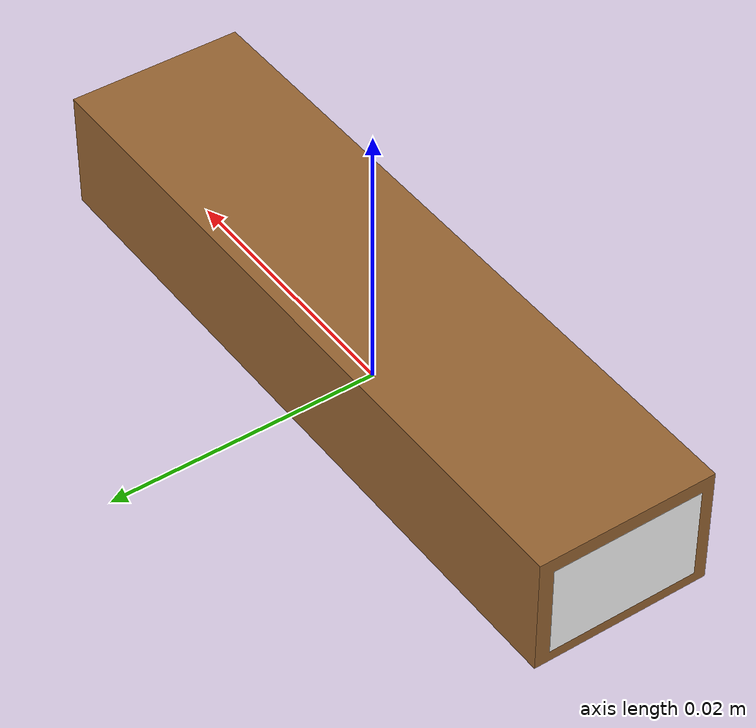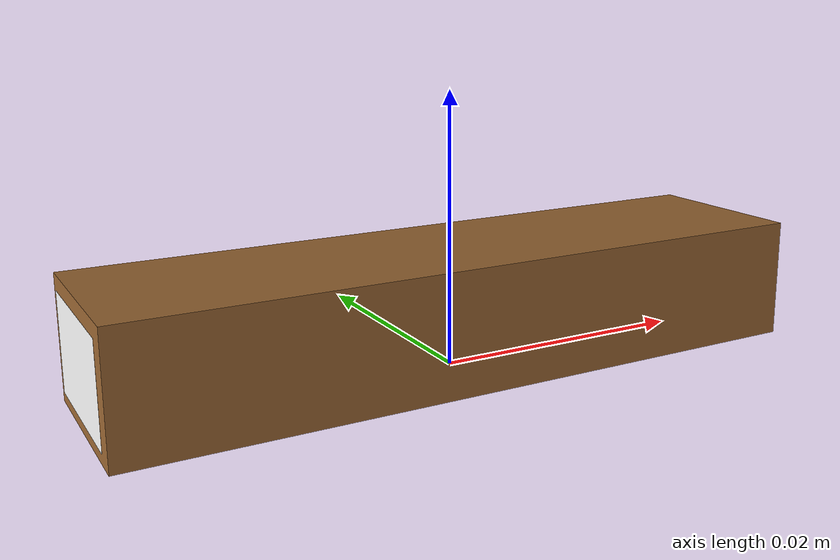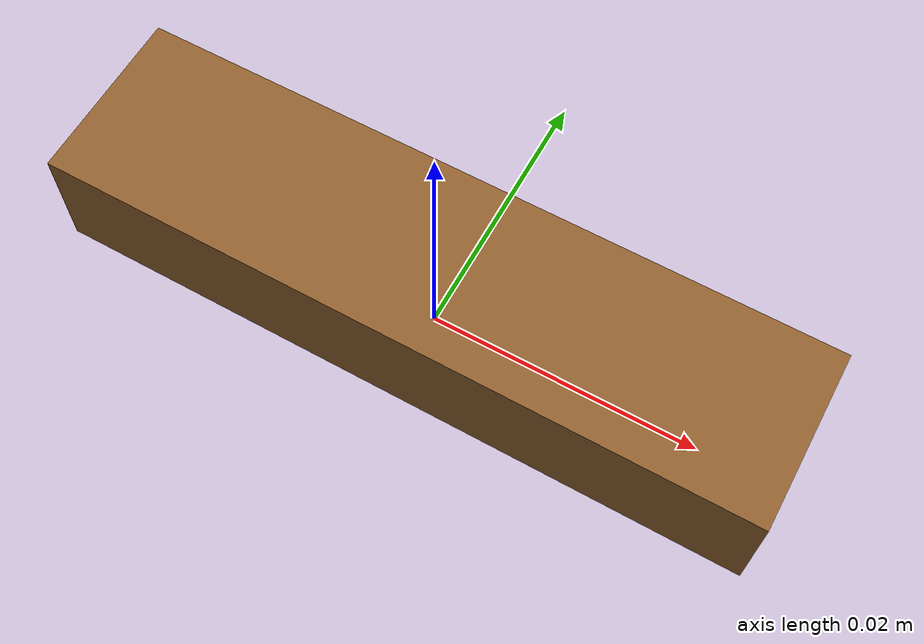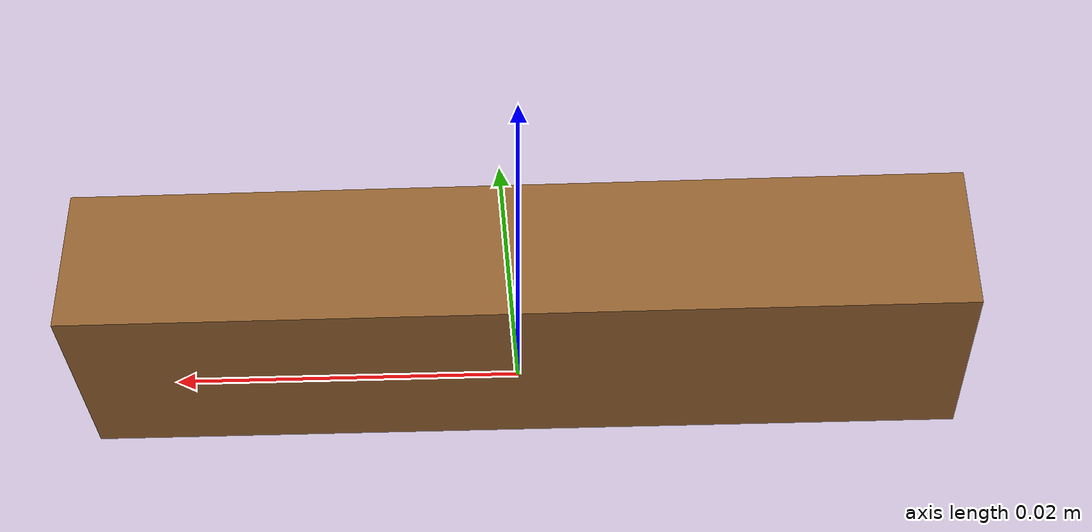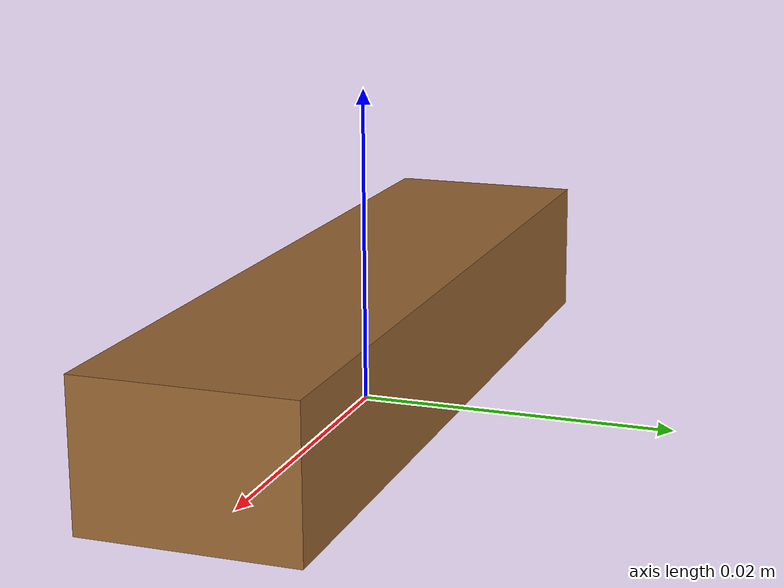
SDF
<?xml version="1.0" ?>
<sdf version="1.6">
  <model name="jenga">
    <pose>0 0 0 0 0 0</pose>

    <link name="link">
      <pose>0 0 0 0 0 0</pose>

      <inertial>
        <mass>0.0073</mass>
        <inertia>
          <ixx>7.604166666666669e-07</ixx>
          <ixy>0</ixy>
          <ixz>0</ixz>
          <iyy>7.604166666666669e-07</iyy>
          <iyz>0</iyz>
          <izz>7.604166666666669e-07</izz>
        </inertia>
      </inertial>

      <collision name="collision">
        <pose>0 0 0.00445 0 0 0</pose>
        <geometry>
          <box>
            <size>0.052 0.013 0.0089</size> <!-- 5.2cm * 1.3cm * 0.89cm -->
          </box>
        </geometry>

        <surface>
          <contact>
            <poissons_ratio>0.347</poissons_ratio>
            <elastic_modulus>8.8e+09</elastic_modulus>
            <ode>
              <kp>100000</kp>
              <kd>100</kd>
              <max_vel>100.0</max_vel>
              <min_depth>0.001</min_depth>
            </ode>
          </contact>
          <friction>
            <torsional>
              <coefficient>1.0</coefficient>
              <use_patch_radius>0</use_patch_radius>
              <surface_radius>0.01</surface_radius>
            </torsional>
          </friction>
        </surface>
      </collision>

      <!-- main mesh visual -->
      <visual name="visual">
        <pose>0 0 0.00445 0 0 0</pose>
        <geometry>
          <box>
            <size>0.052 0.013 0.0089</size>
          </box>
        </geometry>

        <material>
          <ambient>0.6 0.4 0.2 1</ambient>
          <diffuse>0.6 0.4 0.2 1</diffuse>
          <specular>0.05 0.05 0.05 1</specular>
        </material>

      </visual>

      <!-- barcode label -->
      <visual name="left_label">
        <pose>-0.0261 0 0.00445 1.57 0 0</pose>

        <geometry>
          <plane>
            <normal>-1 0 0</normal>
            <size>0.011 0.007</size>
          </plane>
        </geometry>

        <material>
          <pbr>
            <metal>
              <albedo_map>model://jenga/materials/textures/barcode_2.png</albedo_map>
              <roughness>0.2</roughness>
              <metalness>0.0</metalness>
            </metal>
          </pbr>
          <ambient>1 1 1 1</ambient>
          <diffuse>1 1 1 1</diffuse>
          <specular>0 0 0 1</specular>
        </material>

      </visual>

    </link>
  </model>
</sdf>
